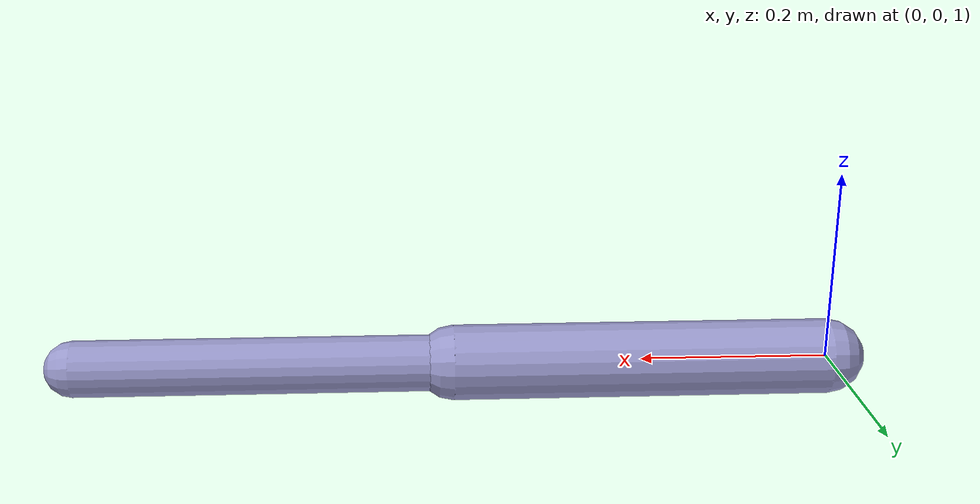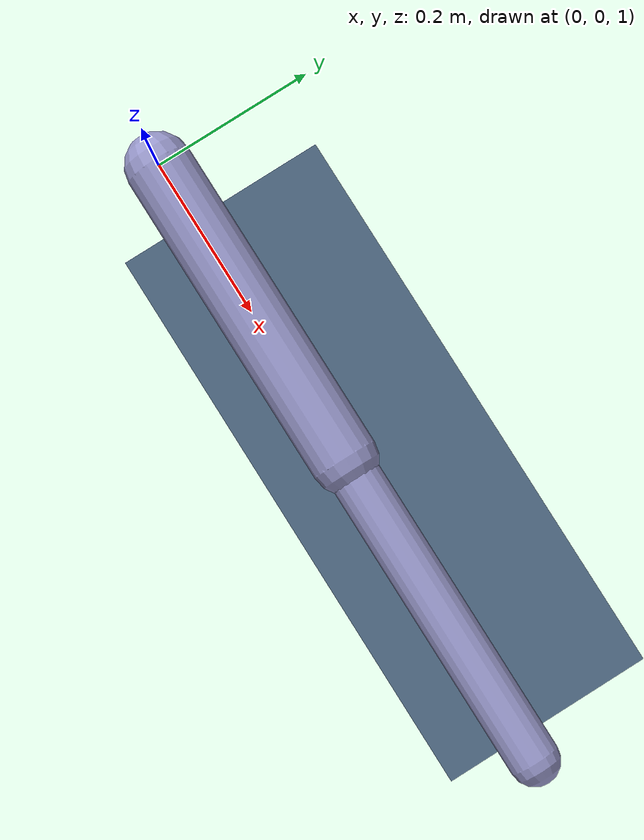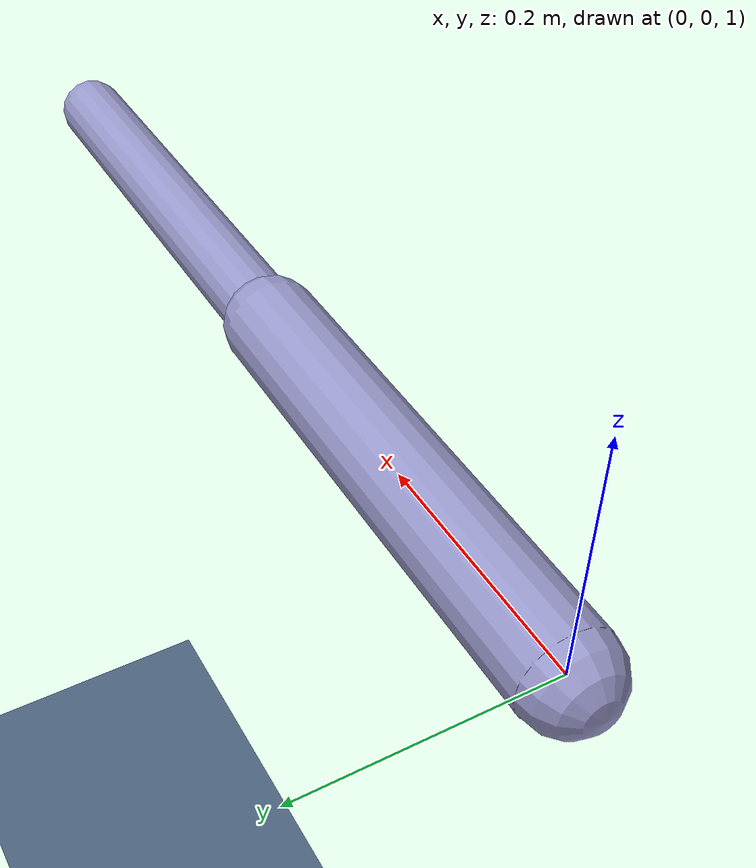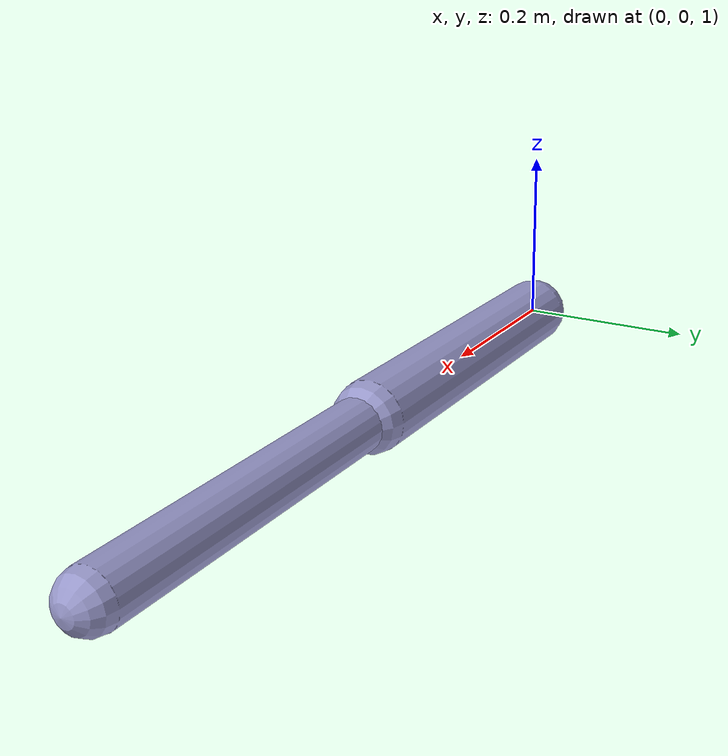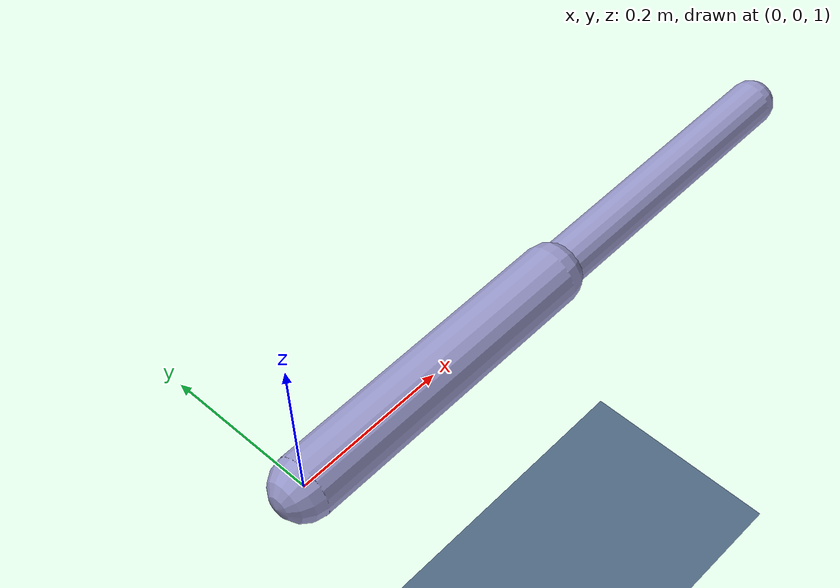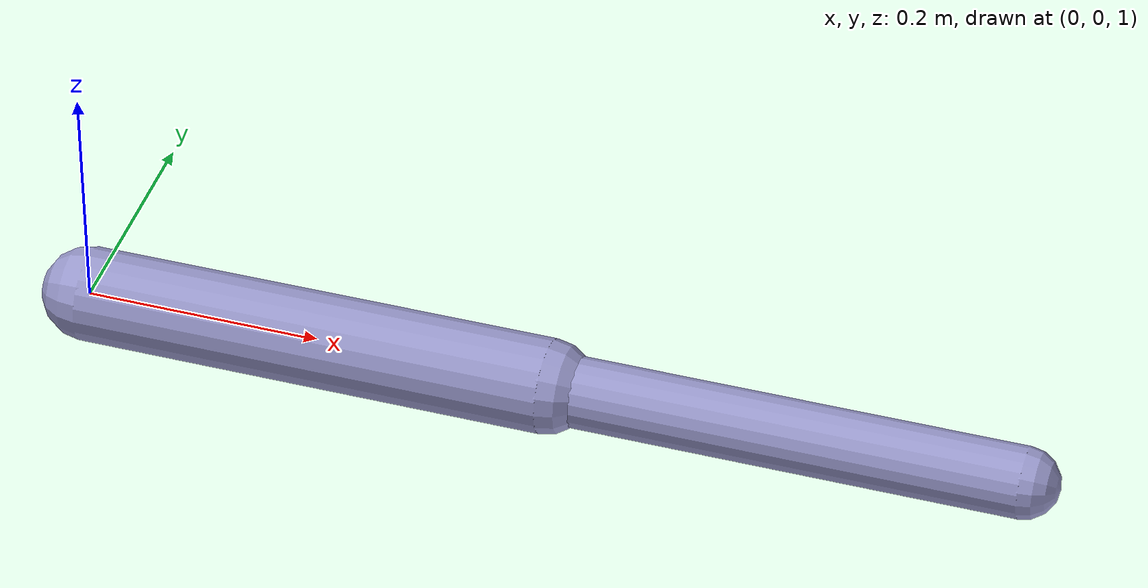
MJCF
<mujoco model="arm_actuators">
  <option timestep="0.002" integrator="implicitfast" gravity="0 0 -9.81"/>

  <!-- Enlarge the offscreen framebuffer so the headless web_viewer can
       render at higher resolutions than the 640x480 default. -->
  <visual>
    <global offwidth="1280" offheight="720"/>
  </visual>

  <default>
    <joint damping="0.1" armature="0.01"/>
    <geom rgba="0.6 0.6 0.8 1"/>
  </default>

  <worldbody>
    <light pos="0 0 3" dir="0 0 -1"/>
    <geom name="floor" type="plane" size="2 2 0.1" rgba="0.3 0.4 0.5 1"/>

    <body name="link1" pos="0 0 1" euler="0 90 0">
      <joint name="shoulder" type="hinge" axis="0 1 0" range="-180 180"/>
      <geom name="g1" type="capsule" fromto="0 0 0 0 0 0.4" size="0.04" mass="1"/>
      <body name="link2" pos="0 0 0.4">
        <joint name="elbow" type="hinge" axis="0 1 0" range="-180 180"/>
        <geom name="g2" type="capsule" fromto="0 0 0 0 0 0.4" size="0.03" mass="0.6"/>
        <site name="tip" pos="0 0 0.4" size="0.02" rgba="1 0 0 1"/>
      </body>
    </body>
  </worldbody>

  <actuator>
    <!-- direct torque -->
    <motor    name="motor_shoulder"    joint="shoulder" ctrlrange="-20 20" gear="1"/>
    <motor    name="motor_elbow"       joint="elbow"    ctrlrange="-20 20" gear="1"/>
    <!-- PD position servo -->
    <position name="position_shoulder" joint="shoulder" kp="50" ctrlrange="-3.14 3.14"/>
    <position name="position_elbow"    joint="elbow"    kp="50" ctrlrange="-3.14 3.14"/>
    <!-- velocity servo -->
    <velocity name="velocity_shoulder" joint="shoulder" kv="5"  ctrlrange="-10 10"/>
    <velocity name="velocity_elbow"    joint="elbow"    kv="5"  ctrlrange="-10 10"/>
  </actuator>
</mujoco>
